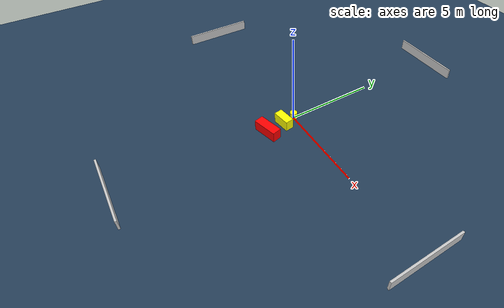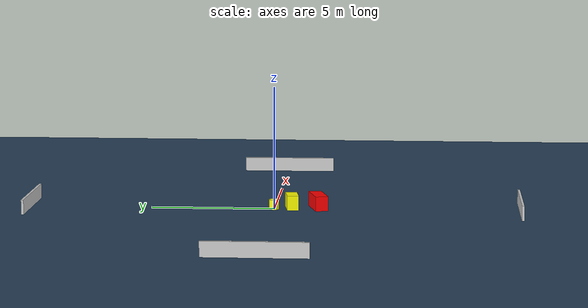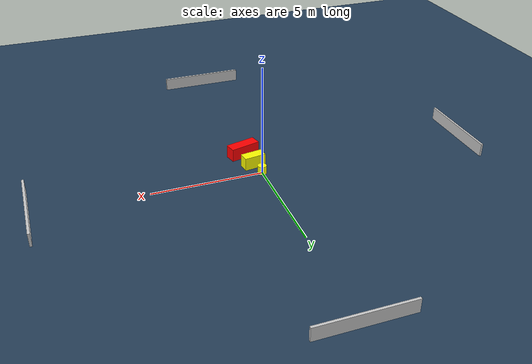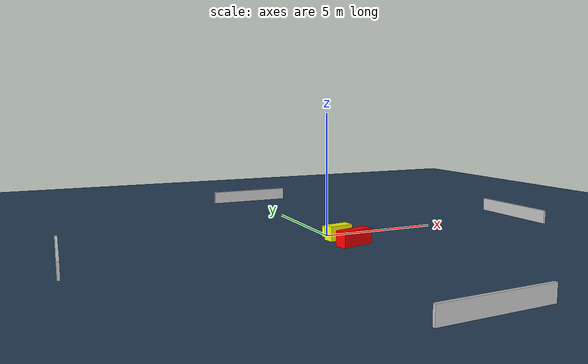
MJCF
<?xml version="1.0" ?>
<mujoco model="generated_environment">
  <option timestep="0.01" integrator="RK4" cone="elliptic"/>
  <default>
    <geom density="1"/>
  </default>
  <asset>
    <texture builtin="gradient" height="3072" name="skybox" rgb1="0.3 0.5 0.7" rgb2="0 0 0" type="skybox" width="512"/>
    <texture builtin="checker" height="300" name="groundplane" rgb1="0.2 0.3 0.4" rgb2="0.1 0.2 0.3" type="2d" width="300"/>
    <material name="groundplane" reflectance="0.2" texrepeat="5 5" texture="groundplane"/>
  </asset>
  <worldbody>
    <light dir="0 0 -1" directional="true" pos="0 0 1.5"/>
    <geom condim="3" friction="0.5 0.005 0.001" material="groundplane" name="floor" pos="0 0 0" size="0 0 0.05" type="plane"/>
    <body name="walls">
      <geom name="wall_1" condim="4" pos="-10.0 0.0 0.3" rgba="0.800000011920929 0.800000011920929 0.800000011920929 1.0" size="0.05 2.0 0.3" type="box"/>
      <geom name="wall_2" condim="4" pos="10.0 0.0 0.3" rgba="0.800000011920929 0.800000011920929 0.800000011920929 1.0" size="0.05 2.0 0.3" type="box"/>
      <geom name="wall_3" condim="4" pos="0.0 -10.0 0.3" rgba="0.800000011920929 0.800000011920929 0.800000011920929 1.0" size="2.0 0.05 0.3" type="box"/>
      <geom name="wall_4" condim="4" pos="0.0 10.0 0.3" rgba="0.800000011920929 0.800000011920929 0.800000011920929 1.0" size="2.0 0.05 0.3" type="box"/>
    </body>
    <body name="robot">
      <joint name="joint_x" type="slide" pos="0 0 0" axis="1 0 0"/>
      <joint name="joint_y" type="slide" pos="0 0 0" axis="0 1 0"/>
      <geom name="robot" type="cylinder" pos="0.0 0.0 0.2" size="0.2 0.2 0.0" mass="5.0" friction="1.0 0.005 0.0001" condim="4" rgba="1.0 1.0 0.0 1.0"/>
    </body>
    <body name="obstacle_1_movable">
      <geom name="obstacle_1_movable" condim="4" pos="0.16725955554044167 -0.7199325447427992 0.3" euler="0 0 278.48295485494435" friction="0.0 0.005 0.001" rgba="1.0 1.0 0.0 1.0" size="0.23377490984705068 0.4968205958715127 0.3" type="box" mass="0.1"/>
      <joint type="free"/>
    </body>
    <body name="obstacle_2_static">
      <geom name="obstacle_2_static" condim="4" pos="0.30043373515467914 -1.787756826040066 0.3" euler="0 0 284.6907487795848" friction="0.0 0.005 0.001" rgba="1.0 0.0 0.0 1.0" size="0.2585225348188821 0.6998675632418255 0.3" type="box"/>
    </body>
  </worldbody>
  <actuator>
    <motor name="actuator_x" joint="joint_x" gear="1" ctrlrange="-1 1"/>
    <motor name="actuator_y" joint="joint_y" gear="1" ctrlrange="-1 1"/>
  </actuator>
</mujoco>
